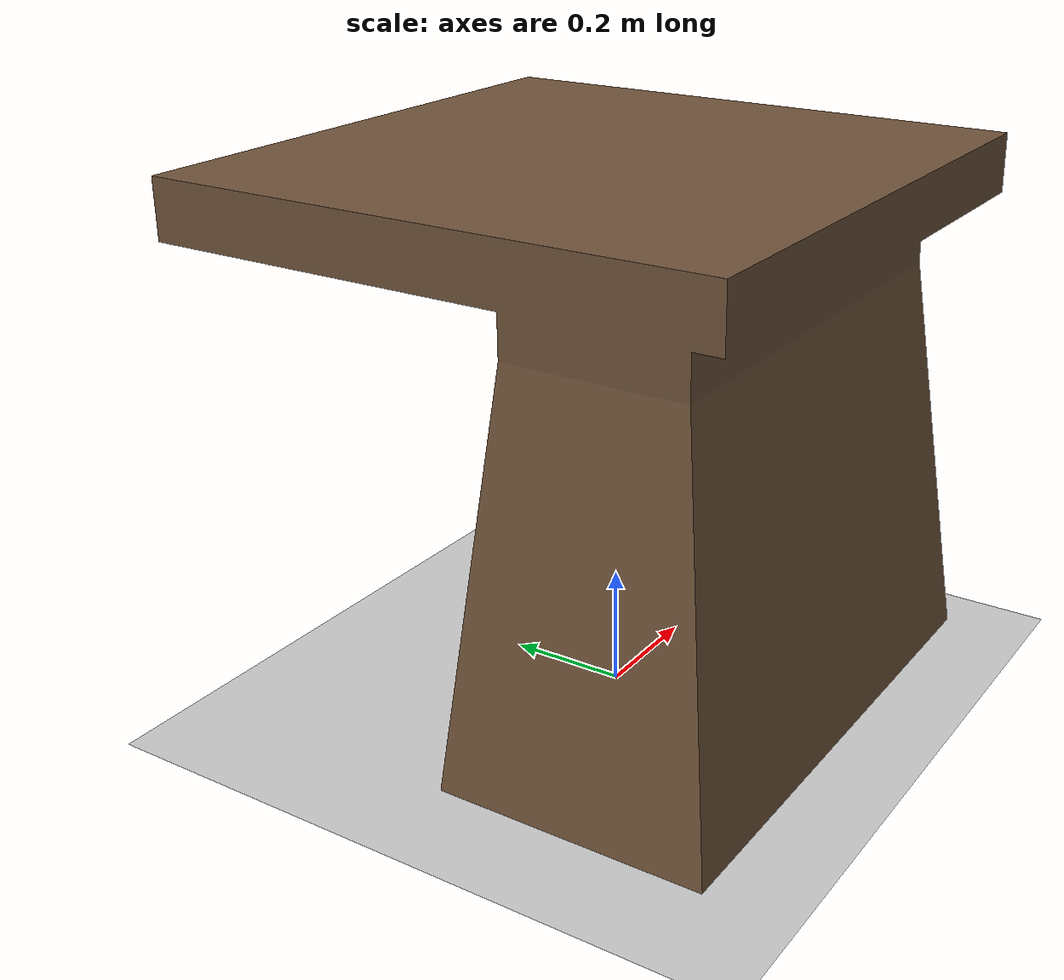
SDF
<sdf version="1.7">
 <world name="default">
  <light name="sun" type="directional">
   <pose>0 0 10 0 -0 0</pose>
   <diffuse>0.8 0.8 0.8 1</diffuse>
   <specular>0.2 0.2 0.2 1</specular>
   <attenuation>
    <range>1000</range>
    <constant>0.9</constant>
    <linear>0.01</linear>
    <quadratic>0.001</quadratic>
   </attenuation>
   <direction>-0.5 0.1 -0.9</direction>
   <spot><inner_angle>0</inner_angle><outer_angle>0</outer_angle><falloff>0</falloff></spot>
  </light>
  <model name="ground_plane">
   <static>1</static>
   <link name="link">
    <collision name="collision">
     <geometry><plane><normal>0 0 1</normal><size>100 100</size></plane></geometry>
     <surface>
      <contact><collide_bitmask>65535</collide_bitmask></contact>
      <friction><ode><mu>100</mu><mu2>50</mu2></ode></friction>
     </surface>
    </collision>
    <visual name="visual">
     <cast_shadows>0</cast_shadows>
     <geometry><plane><normal>0 0 1</normal><size>100 100</size></plane></geometry>
     <material>
      <script><uri>file://media/materials/scripts/gazebo.material</uri><name>Gazebo/Grey</name></script>
     </material>
    </visual>
   </link>
  </model>
  <gravity>0 0 -9.8</gravity>
  <magnetic_field>6e-06 2.3e-05 -4.2e-05</magnetic_field>
  <atmosphere type="adiabatic"/>
  <physics type="ode">
   <max_step_size>0.001</max_step_size>
   <real_time_factor>1</real_time_factor>
   <real_time_update_rate>1000</real_time_update_rate>
  </physics>
  <scene><ambient>0.4 0.4 0.4 1</ambient><background>0.7 0.7 0.7 1</background><shadows>1</shadows></scene>
  <spherical_coordinates>
   <surface_model>EARTH_WGS84</surface_model>
   <latitude_deg>0</latitude_deg>
   <longitude_deg>0</longitude_deg>
   <elevation>0</elevation>
   <heading_deg>0</heading_deg>
  </spherical_coordinates>
  <model name="wc3_table">
   <pose>0 0 0.4572 0 -0 0</pose>
   <static>0</static>
   <link name="base_link">
    <visual name="visual_model">
     <geometry><mesh><uri>model://wc3_table/meshes/wc3_table_visual.stl</uri></mesh></geometry>
     <material>
      <ambient>0.44 0.33 0.23 1</ambient>
      <diffuse>0.44 0.33 0.23 1</diffuse>
      <specular>0 0 0 0</specular>
      <emissive>0 0 0 1</emissive>
     </material>
    </visual>
    <collision name="collision_model">
     <geometry><mesh><uri>model://wc3_table/meshes/wc3_table_collision.stl</uri></mesh></geometry>
     <surface><friction><ode><mu>100</mu><mu2>50</mu2></ode></friction></surface>
    </collision>
    <inertial>
     <mass>50.0</mass>
     <pose>-0.0062 -0.0683 0.0536 0.000 0.000 0.000</pose>
     <inertia>
      <ixx>5.8162</ixx>
      <ixy>0.0000</ixy>
      <ixz>0.0000</ixz>
      <iyy>6.8527</iyy>
      <iyz>0.0000</iyz>
      <izz>6.0355</izz>
     </inertia>
    </inertial>
   </link>
  </model>
 </world>
</sdf>
